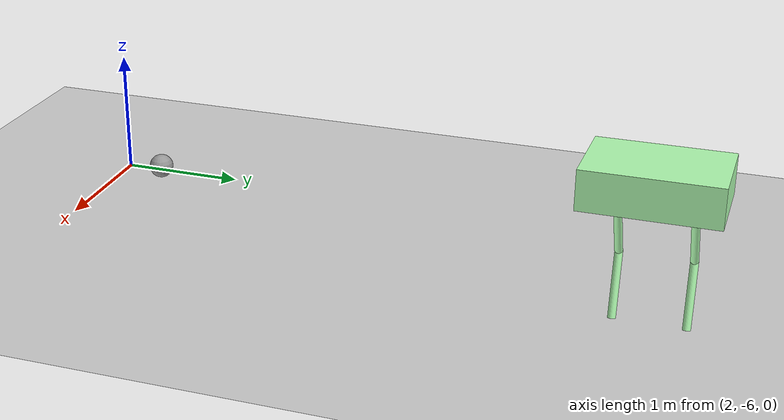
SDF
<sdf version="1.6">
 <world name="default">
  <model name="ground_plane">
   <static>1</static>
   <link name="link">
    <collision name="collision">
     <geometry><plane><normal>0 0 1</normal><size>100 100</size></plane></geometry>
     <surface>
      <contact><collide_bitmask>65535</collide_bitmask></contact>
      <friction><ode><mu>100</mu><mu2>50</mu2></ode></friction>
     </surface>
    </collision>
    <visual name="visual">
     <cast_shadows>0</cast_shadows>
     <geometry><plane><normal>0 0 1</normal><size>100 100</size></plane></geometry>
     <material>
      <script><uri>file://media/materials/scripts/gazebo.material</uri><name>Gazebo/Grey</name></script>
     </material>
    </visual>
   </link>
  </model>
  <model name="HumanoidRobot_0">
   <link name="link_0">
    <inertial>
     <mass>1</mass>
     <inertia>
      <ixx>0.166667</ixx>
      <ixy>0</ixy>
      <ixz>0</ixz>
      <iyy>0.166667</iyy>
      <iyz>0</iyz>
      <izz>0.166667</izz>
     </inertia>
    </inertial>
    <pose>-6.56825 -1.71511 1.34999 0 -0 0</pose>
    <visual name="visual">
     <geometry><box><size>0.7 1 0.3</size></box></geometry>
     <material>
      <lighting>1</lighting>
      <script><uri>file://media/materials/scripts/gazebo.material</uri><name>Gazebo/Grey</name></script>
      <shader type="vertex"><normal_map>__default__</normal_map></shader>
      <ambient>0.3 0.7 0.3 1</ambient>
      <diffuse>0.7 1 0.7 1</diffuse>
      <specular>0 0 0 1</specular>
      <emissive>0 0 0 1</emissive>
     </material>
    </visual>
    <collision name="collision">
     <geometry><box><size>0.7 1 0.3</size></box></geometry>
     <surface>
      <friction>
       <ode><mu>1</mu><mu2>1</mu2><fdir1>0 0 0</fdir1><slip1>0</slip1><slip2>0</slip2></ode>
       <torsional>
        <coefficient>1</coefficient>
        <patch_radius>0</patch_radius>
        <surface_radius>0</surface_radius>
        <use_patch_radius>1</use_patch_radius>
        <ode><slip>0</slip></ode>
       </torsional>
      </friction>
      <bounce><restitution_coefficient>0</restitution_coefficient><threshold>1e+06</threshold></bounce>
      <contact>
       <collide_without_contact>0</collide_without_contact>
       <collide_without_contact_bitmask>1</collide_without_contact_bitmask>
       <collide_bitmask>1</collide_bitmask>
       <ode>
        <soft_cfm>0</soft_cfm>
        <soft_erp>0.2</soft_erp>
        <kp>1e+13</kp>
        <kd>1</kd>
        <max_vel>0.01</max_vel>
        <min_depth>0</min_depth>
       </ode>
       <bullet>
        <split_impulse>1</split_impulse>
        <split_impulse_penetration_threshold>-0.01</split_impulse_penetration_threshold>
        <soft_cfm>0</soft_cfm>
        <soft_erp>0.2</soft_erp>
        <kp>1e+13</kp>
        <kd>1</kd>
       </bullet>
      </contact>
     </surface>
    </collision>
   </link>
   <link name="link_1_clone_0">
    <inertial>
     <mass>1</mass>
     <inertia><ixx>0.145833</ixx><ixy>0</ixy><ixz>0</ixz><iyy>0.145833</iyy><iyz>0</iyz><izz>0.125</izz></inertia>
    </inertial>
    <pose>-6.53801 -2.01511 0.521053 0 0.2 0</pose>
    <visual name="visual">
     <geometry><cylinder><radius>0.03</radius><length>0.5</length></cylinder></geometry>
     <material>
      <lighting>1</lighting>
      <script><uri>file://media/materials/scripts/gazebo.material</uri><name>Gazebo/Grey</name></script>
      <shader type="vertex"><normal_map>__default__</normal_map></shader>
      <ambient>0.3 0.7 0.3 1</ambient>
      <diffuse>0.7 1 0.7 1</diffuse>
      <specular>0 0 0 1</specular>
      <emissive>0 0 0 1</emissive>
     </material>
    </visual>
    <collision name="collision">
     <geometry><cylinder><radius>0.03</radius><length>0.5</length></cylinder></geometry>
     <surface>
      <friction>
       <ode><mu>1</mu><mu2>1</mu2><fdir1>0 0 0</fdir1><slip1>0</slip1><slip2>0</slip2></ode>
       <torsional>
        <coefficient>1</coefficient>
        <patch_radius>0</patch_radius>
        <surface_radius>0</surface_radius>
        <use_patch_radius>1</use_patch_radius>
        <ode><slip>0</slip></ode>
       </torsional>
      </friction>
      <bounce><restitution_coefficient>0</restitution_coefficient><threshold>1e+06</threshold></bounce>
      <contact>
       <collide_without_contact>0</collide_without_contact>
       <collide_without_contact_bitmask>1</collide_without_contact_bitmask>
       <collide_bitmask>1</collide_bitmask>
       <ode>
        <soft_cfm>0</soft_cfm>
        <soft_erp>0.2</soft_erp>
        <kp>1e+13</kp>
        <kd>1</kd>
        <max_vel>0.01</max_vel>
        <min_depth>0</min_depth>
       </ode>
       <bullet>
        <split_impulse>1</split_impulse>
        <split_impulse_penetration_threshold>-0.01</split_impulse_penetration_threshold>
        <soft_cfm>0</soft_cfm>
        <soft_erp>0.2</soft_erp>
        <kp>1e+13</kp>
        <kd>1</kd>
       </bullet>
      </contact>
     </surface>
    </collision>
   </link>
   <link name="link_1_clone_0_clone">
    <inertial>
     <mass>1</mass>
     <inertia><ixx>0.145833</ixx><ixy>0</ixy><ixz>0</ixz><iyy>0.145833</iyy><iyz>0</iyz><izz>0.125</izz></inertia>
    </inertial>
    <pose>-6.53415 -1.4838 0.523166 0 0.2 0</pose>
    <visual name="visual">
     <geometry><cylinder><radius>0.03</radius><length>0.5</length></cylinder></geometry>
     <material>
      <lighting>1</lighting>
      <script><uri>file://media/materials/scripts/gazebo.material</uri><name>Gazebo/Grey</name></script>
      <shader type="vertex"><normal_map>__default__</normal_map></shader>
      <ambient>0.3 0.7 0.3 1</ambient>
      <diffuse>0.7 1 0.7 1</diffuse>
      <specular>0 0 0 1</specular>
      <emissive>0 0 0 1</emissive>
     </material>
    </visual>
    <collision name="collision">
     <geometry><cylinder><radius>0.03</radius><length>0.5</length></cylinder></geometry>
     <surface>
      <friction>
       <ode><mu>1</mu><mu2>1</mu2><fdir1>0 0 0</fdir1><slip1>0</slip1><slip2>0</slip2></ode>
       <torsional>
        <coefficient>1</coefficient>
        <patch_radius>0</patch_radius>
        <surface_radius>0</surface_radius>
        <use_patch_radius>1</use_patch_radius>
        <ode><slip>0</slip></ode>
       </torsional>
      </friction>
      <bounce><restitution_coefficient>0</restitution_coefficient><threshold>1e+06</threshold></bounce>
      <contact>
       <collide_without_contact>0</collide_without_contact>
       <collide_without_contact_bitmask>1</collide_without_contact_bitmask>
       <collide_bitmask>1</collide_bitmask>
       <ode>
        <soft_cfm>0</soft_cfm>
        <soft_erp>0.2</soft_erp>
        <kp>1e+13</kp>
        <kd>1</kd>
        <max_vel>0.01</max_vel>
        <min_depth>0</min_depth>
       </ode>
       <bullet>
        <split_impulse>1</split_impulse>
        <split_impulse_penetration_threshold>-0.01</split_impulse_penetration_threshold>
        <soft_cfm>0</soft_cfm>
        <soft_erp>0.2</soft_erp>
        <kp>1e+13</kp>
        <kd>1</kd>
       </bullet>
      </contact>
     </surface>
    </collision>
   </link>
   <link name="link_1_clone_1">
    <inertial>
     <mass>1</mass>
     <inertia><ixx>0.145833</ixx><ixy>0</ixy><ixz>0</ixz><iyy>0.145833</iyy><iyz>0</iyz><izz>0.125</izz></inertia>
    </inertial>
    <pose>-6.61825 -2.01511 0.989992 0 -0.5 0</pose>
    <visual name="visual">
     <geometry><cylinder><radius>0.03</radius><length>0.5</length></cylinder></geometry>
     <material>
      <lighting>1</lighting>
      <script><uri>file://media/materials/scripts/gazebo.material</uri><name>Gazebo/Grey</name></script>
      <shader type="vertex"><normal_map>__default__</normal_map></shader>
      <ambient>0.3 0.7 0.3 1</ambient>
      <diffuse>0.7 1 0.7 1</diffuse>
      <specular>0 0 0 1</specular>
      <emissive>0 0 0 1</emissive>
     </material>
    </visual>
    <collision name="collision">
     <geometry><cylinder><radius>0.03</radius><length>0.5</length></cylinder></geometry>
     <surface>
      <friction>
       <ode><mu>1</mu><mu2>1</mu2><fdir1>0 0 0</fdir1><slip1>0</slip1><slip2>0</slip2></ode>
       <torsional>
        <coefficient>1</coefficient>
        <patch_radius>0</patch_radius>
        <surface_radius>0</surface_radius>
        <use_patch_radius>1</use_patch_radius>
        <ode><slip>0</slip></ode>
       </torsional>
      </friction>
      <bounce><restitution_coefficient>0</restitution_coefficient><threshold>1e+06</threshold></bounce>
      <contact>
       <collide_without_contact>0</collide_without_contact>
       <collide_without_contact_bitmask>1</collide_without_contact_bitmask>
       <collide_bitmask>1</collide_bitmask>
       <ode>
        <soft_cfm>0</soft_cfm>
        <soft_erp>0.2</soft_erp>
        <kp>1e+13</kp>
        <kd>1</kd>
        <max_vel>0.01</max_vel>
        <min_depth>0</min_depth>
       </ode>
       <bullet>
        <split_impulse>1</split_impulse>
        <split_impulse_penetration_threshold>-0.01</split_impulse_penetration_threshold>
        <soft_cfm>0</soft_cfm>
        <soft_erp>0.2</soft_erp>
        <kp>1e+13</kp>
        <kd>1</kd>
       </bullet>
      </contact>
     </surface>
    </collision>
   </link>
   <link name="link_1_clone_1_clone">
    <inertial>
     <mass>1</mass>
     <inertia><ixx>0.145833</ixx><ixy>0</ixy><ixz>0</ixz><iyy>0.145833</iyy><iyz>0</iyz><izz>0.125</izz></inertia>
    </inertial>
    <pose>-6.61825 -1.4838 0.989992 0 -0.5 0</pose>
    <visual name="visual">
     <geometry><cylinder><radius>0.03</radius><length>0.5</length></cylinder></geometry>
     <material>
      <lighting>1</lighting>
      <script><uri>file://media/materials/scripts/gazebo.material</uri><name>Gazebo/Grey</name></script>
      <shader type="vertex"><normal_map>__default__</normal_map></shader>
      <ambient>0.3 0.7 0.3 1</ambient>
      <diffuse>0.7 1 0.7 1</diffuse>
      <specular>0 0 0 1</specular>
      <emissive>0 0 0 1</emissive>
     </material>
    </visual>
    <collision name="collision">
     <geometry><cylinder><radius>0.03</radius><length>0.5</length></cylinder></geometry>
     <surface>
      <friction>
       <ode><mu>1</mu><mu2>1</mu2><fdir1>0 0 0</fdir1><slip1>0</slip1><slip2>0</slip2></ode>
       <torsional>
        <coefficient>1</coefficient>
        <patch_radius>0</patch_radius>
        <surface_radius>0</surface_radius>
        <use_patch_radius>1</use_patch_radius>
        <ode><slip>0</slip></ode>
       </torsional>
      </friction>
      <bounce><restitution_coefficient>0</restitution_coefficient><threshold>1e+06</threshold></bounce>
      <contact>
       <collide_without_contact>0</collide_without_contact>
       <collide_without_contact_bitmask>1</collide_without_contact_bitmask>
       <collide_bitmask>1</collide_bitmask>
       <ode>
        <soft_cfm>0</soft_cfm>
        <soft_erp>0.2</soft_erp>
        <kp>1e+13</kp>
        <kd>1</kd>
        <max_vel>0.01</max_vel>
        <min_depth>0</min_depth>
       </ode>
       <bullet>
        <split_impulse>1</split_impulse>
        <split_impulse_penetration_threshold>-0.01</split_impulse_penetration_threshold>
        <soft_cfm>0</soft_cfm>
        <soft_erp>0.2</soft_erp>
        <kp>1e+13</kp>
        <kd>1</kd>
       </bullet>
      </contact>
     </surface>
    </collision>
   </link>
   <link name="link_2">
    <inertial>
     <mass>1</mass>
     <inertia>
      <ixx>0.166667</ixx>
      <ixy>0</ixy>
      <ixz>0</ixz>
      <iyy>0.166667</iyy>
      <iyz>0</iyz>
      <izz>0.166667</izz>
     </inertia>
    </inertial>
    <pose>-6.43871 -2.03011 0.255906 0 -0 0</pose>
    <visual name="visual">
     <geometry><box><size>0.4 0.22 0.03</size></box></geometry>
     <material>
      <lighting>1</lighting>
      <script><uri>file://media/materials/scripts/gazebo.material</uri><name>Gazebo/Grey</name></script>
      <shader type="vertex"><normal_map>__default__</normal_map></shader>
      <ambient>0.3 0.7 0.3 1</ambient>
      <diffuse>0.7 1 0.7 1</diffuse>
      <specular>0 0 0 1</specular>
      <emissive>0 0 0 1</emissive>
     </material>
    </visual>
    <collision name="collision">
     <geometry><box><size>0.4 0.22 0.03</size></box></geometry>
     <surface>
      <friction>
       <ode><mu>1</mu><mu2>1</mu2><fdir1>0 0 0</fdir1><slip1>0</slip1><slip2>0</slip2></ode>
       <torsional>
        <coefficient>1</coefficient>
        <patch_radius>0</patch_radius>
        <surface_radius>0</surface_radius>
        <use_patch_radius>1</use_patch_radius>
        <ode><slip>0</slip></ode>
       </torsional>
      </friction>
      <bounce><restitution_coefficient>0</restitution_coefficient><threshold>1e+06</threshold></bounce>
      <contact>
       <collide_without_contact>0</collide_without_contact>
       <collide_without_contact_bitmask>1</collide_without_contact_bitmask>
       <collide_bitmask>1</collide_bitmask>
       <ode>
        <soft_cfm>0</soft_cfm>
        <soft_erp>0.2</soft_erp>
        <kp>1e+13</kp>
        <kd>1</kd>
        <max_vel>0.01</max_vel>
        <min_depth>0</min_depth>
       </ode>
       <bullet>
        <split_impulse>1</split_impulse>
        <split_impulse_penetration_threshold>-0.01</split_impulse_penetration_threshold>
        <soft_cfm>0</soft_cfm>
        <soft_erp>0.2</soft_erp>
        <kp>1e+13</kp>
        <kd>1</kd>
       </bullet>
      </contact>
     </surface>
    </collision>
   </link>
   <link name="link_2_clone">
    <inertial>
     <mass>1</mass>
     <inertia>
      <ixx>0.166667</ixx>
      <ixy>0</ixy>
      <ixz>0</ixz>
      <iyy>0.166667</iyy>
      <iyz>0</iyz>
      <izz>0.166667</izz>
     </inertia>
    </inertial>
    <pose>-6.43482 -1.4838 0.258149 0 -0 0</pose>
    <visual name="visual">
     <geometry><box><size>0.4 0.22 0.03</size></box></geometry>
     <material>
      <lighting>1</lighting>
      <script><uri>file://media/materials/scripts/gazebo.material</uri><name>Gazebo/Grey</name></script>
      <shader type="vertex"><normal_map>__default__</normal_map></shader>
      <ambient>0.3 0.7 0.3 1</ambient>
      <diffuse>0.7 1 0.7 1</diffuse>
      <specular>0 0 0 1</specular>
      <emissive>0 0 0 1</emissive>
     </material>
    </visual>
    <collision name="collision">
     <geometry><box><size>0.4 0.22 0.03</size></box></geometry>
     <surface>
      <friction>
       <ode><mu>1</mu><mu2>1</mu2><fdir1>0 0 0</fdir1><slip1>0</slip1><slip2>0</slip2></ode>
       <torsional>
        <coefficient>1</coefficient>
        <patch_radius>0</patch_radius>
        <surface_radius>0</surface_radius>
        <use_patch_radius>1</use_patch_radius>
        <ode><slip>0</slip></ode>
       </torsional>
      </friction>
      <bounce><restitution_coefficient>0</restitution_coefficient><threshold>1e+06</threshold></bounce>
      <contact>
       <collide_without_contact>0</collide_without_contact>
       <collide_without_contact_bitmask>1</collide_without_contact_bitmask>
       <collide_bitmask>1</collide_bitmask>
       <ode>
        <soft_cfm>0</soft_cfm>
        <soft_erp>0.2</soft_erp>
        <kp>1e+13</kp>
        <kd>1</kd>
        <max_vel>0.01</max_vel>
        <min_depth>0</min_depth>
       </ode>
       <bullet>
        <split_impulse>1</split_impulse>
        <split_impulse_penetration_threshold>-0.01</split_impulse_penetration_threshold>
        <soft_cfm>0</soft_cfm>
        <soft_erp>0.2</soft_erp>
        <kp>1e+13</kp>
        <kd>1</kd>
       </bullet>
      </contact>
     </surface>
    </collision>
   </link>
   <joint name="link_0_JOINT_0" type="revolute">
    <parent>link_0</parent>
    <child>link_1_clone_1</child>
    <pose>0 0 0.25 0 -0.5 0</pose>
    <axis>
     <xyz>0 1 0</xyz>
     <use_parent_model_frame>0</use_parent_model_frame>
     <limit><lower>-1e+16</lower><upper>1e+16</upper><effort>-1</effort><velocity>-1</velocity></limit>
     <dynamics>
      <spring_reference>0</spring_reference>
      <spring_stiffness>0</spring_stiffness>
      <damping>0</damping>
      <friction>5</friction>
     </dynamics>
    </axis>
    <physics>
     <ode><limit><cfm>0</cfm><erp>0.2</erp></limit><suspension><cfm>0</cfm><erp>0.2</erp></suspension></ode>
    </physics>
   </joint>
   <joint name="link_0_JOINT_5" type="revolute">
    <parent>link_0</parent>
    <child>link_1_clone_1_clone</child>
    <pose>0 0 0.25 0 -0.5 0</pose>
    <axis>
     <xyz>0 1 0</xyz>
     <use_parent_model_frame>0</use_parent_model_frame>
     <limit><lower>-1e+16</lower><upper>1e+16</upper><effort>-1</effort><velocity>-1</velocity></limit>
     <dynamics>
      <spring_reference>0</spring_reference>
      <spring_stiffness>0</spring_stiffness>
      <damping>0</damping>
      <friction>5</friction>
     </dynamics>
    </axis>
    <physics>
     <ode><limit><cfm>0</cfm><erp>0.2</erp></limit><suspension><cfm>0</cfm><erp>0.2</erp></suspension></ode>
    </physics>
   </joint>
   <joint name="link_1_clone_0_JOINT_4" type="revolute">
    <parent>link_1_clone_0</parent>
    <child>link_2</child>
    <pose>-0.15 0 0 0 -0 0</pose>
    <axis>
     <xyz>0 1 0</xyz>
     <use_parent_model_frame>0</use_parent_model_frame>
     <limit><lower>-1e+16</lower><upper>1e+16</upper><effort>-1</effort><velocity>-1</velocity></limit>
     <dynamics>
      <spring_reference>0</spring_reference>
      <spring_stiffness>0</spring_stiffness>
      <damping>0</damping>
      <friction>5</friction>
     </dynamics>
    </axis>
    <physics>
     <ode><limit><cfm>0</cfm><erp>0.2</erp></limit><suspension><cfm>0</cfm><erp>0.2</erp></suspension></ode>
    </physics>
   </joint>
   <joint name="link_1_clone_0_clone_JOINT_7" type="revolute">
    <parent>link_1_clone_0_clone</parent>
    <child>link_2_clone</child>
    <pose>-0.15 0 0 0 -0 0</pose>
    <axis>
     <xyz>0 1 0</xyz>
     <use_parent_model_frame>0</use_parent_model_frame>
     <limit><lower>-1e+16</lower><upper>1e+16</upper><effort>-1</effort><velocity>-1</velocity></limit>
     <dynamics>
      <spring_reference>0</spring_reference>
      <spring_stiffness>0</spring_stiffness>
      <damping>0</damping>
      <friction>5</friction>
     </dynamics>
    </axis>
    <physics>
     <ode><limit><cfm>0</cfm><erp>0.2</erp></limit><suspension><cfm>0</cfm><erp>0.2</erp></suspension></ode>
    </physics>
   </joint>
   <joint name="link_1_clone_1_JOINT_3" type="revolute">
    <parent>link_1_clone_1</parent>
    <child>link_1_clone_0</child>
    <pose>0 0 0.25 0 -0.7 0</pose>
    <axis>
     <xyz>0 1 0</xyz>
     <use_parent_model_frame>0</use_parent_model_frame>
     <limit>
      <lower>-1.79769e+308</lower>
      <upper>1.79769e+308</upper>
      <effort>-1</effort>
      <velocity>-1</velocity>
     </limit>
     <dynamics>
      <spring_reference>0</spring_reference>
      <spring_stiffness>0</spring_stiffness>
      <damping>0</damping>
      <friction>7</friction>
     </dynamics>
    </axis>
    <physics>
     <ode><limit><cfm>0</cfm><erp>0.2</erp></limit><suspension><cfm>0</cfm><erp>0.2</erp></suspension></ode>
    </physics>
   </joint>
   <joint name="link_1_clone_1_clone_JOINT_6" type="revolute">
    <parent>link_1_clone_1_clone</parent>
    <child>link_1_clone_0_clone</child>
    <pose>0 0 0.25 0 -0.7 0</pose>
    <axis>
     <xyz>0 1 0</xyz>
     <use_parent_model_frame>0</use_parent_model_frame>
     <limit>
      <lower>-1.79769e+308</lower>
      <upper>1.79769e+308</upper>
      <effort>-1</effort>
      <velocity>-1</velocity>
     </limit>
     <dynamics>
      <spring_reference>0</spring_reference>
      <spring_stiffness>0</spring_stiffness>
      <damping>0</damping>
      <friction>7</friction>
     </dynamics>
    </axis>
    <physics>
     <ode><limit><cfm>0</cfm><erp>0.2</erp></limit><suspension><cfm>0</cfm><erp>0.2</erp></suspension></ode>
    </physics>
   </joint>
   <static>0</static>
   <pose>-3.22203 -3.00408 -0.581933 2e-06 0.04534 -3.13666</pose>
  </model>
  <model name="my_ball">
   <link name="link_0">
    <inertial>
     <mass>1</mass>
     <inertia><ixx>0.1</ixx><ixy>0</ixy><ixz>0</ixz><iyy>0.1</iyy><iyz>0</iyz><izz>0.1</izz></inertia>
    </inertial>
    <visual name="visual">
     <geometry><sphere><radius>0.1</radius></sphere></geometry>
     <material>
      <lighting>1</lighting>
      <script><uri>file://media/materials/scripts/gazebo.material</uri><name>Gazebo/Grey</name></script>
      <shader type="vertex"><normal_map>__default__</normal_map></shader>
      <ambient>1 1 1 1</ambient>
      <diffuse>1 1 1 1</diffuse>
      <specular>1 1 1 1</specular>
      <emissive>1 1 1 1</emissive>
     </material>
    </visual>
    <collision name="collision">
     <geometry><sphere><radius>0.1</radius></sphere></geometry>
     <surface>
      <friction>
       <ode><mu>1</mu><mu2>1</mu2><fdir1>0 0 0</fdir1><slip1>0</slip1><slip2>0</slip2></ode>
       <torsional>
        <coefficient>1</coefficient>
        <patch_radius>0</patch_radius>
        <surface_radius>0</surface_radius>
        <use_patch_radius>1</use_patch_radius>
        <ode><slip>0</slip></ode>
       </torsional>
      </friction>
      <bounce><restitution_coefficient>0</restitution_coefficient><threshold>1e+06</threshold></bounce>
      <contact>
       <collide_without_contact>0</collide_without_contact>
       <collide_without_contact_bitmask>1</collide_without_contact_bitmask>
       <collide_bitmask>1</collide_bitmask>
       <ode>
        <soft_cfm>0</soft_cfm>
        <soft_erp>0.2</soft_erp>
        <kp>1e+13</kp>
        <kd>1</kd>
        <max_vel>0.01</max_vel>
        <min_depth>0</min_depth>
       </ode>
       <bullet>
        <split_impulse>1</split_impulse>
        <split_impulse_penetration_threshold>-0.01</split_impulse_penetration_threshold>
        <soft_cfm>0</soft_cfm>
        <soft_erp>0.2</soft_erp>
        <kp>1e+13</kp>
        <kd>1</kd>
       </bullet>
      </contact>
     </surface>
    </collision>
   </link>
   <static>0</static>
   <pose>2.13316 -5.63361 0.1 0 -0 0</pose>
  </model>
 </world>
</sdf>
